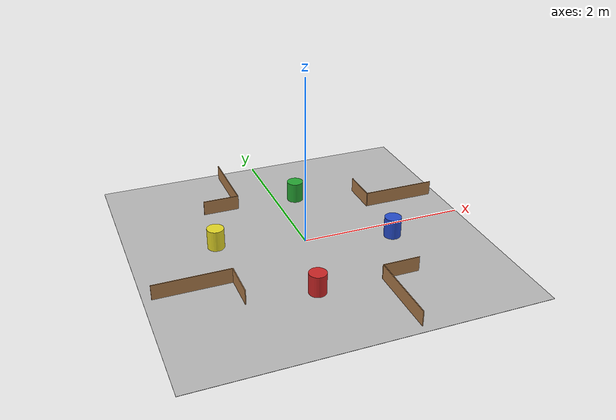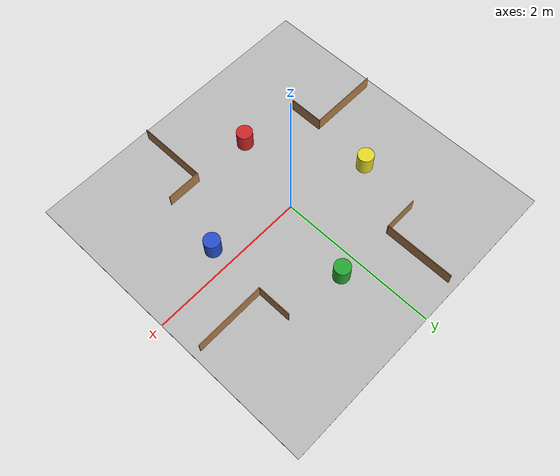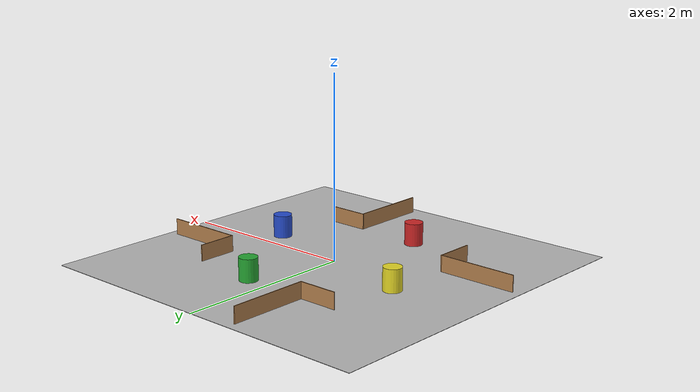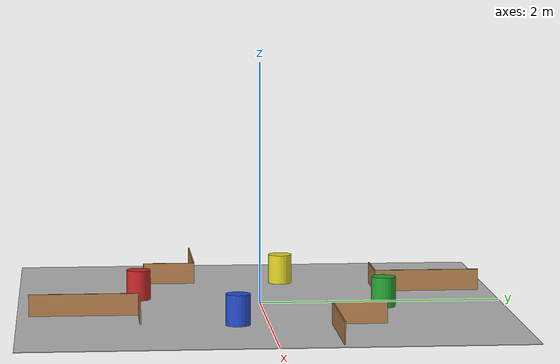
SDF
<?xml version="1.0"?>
<sdf version="1.4">
<model name="task2b">
  <static>true</static>
    <link name="floor">
      <collision name="collision">
        <geometry>
          <plane>
            <normal>0 0 1</normal>
            <size>4.0 4.0</size>
          </plane>
        </geometry>
        <surface>
          <friction>
            <ode>
              <mu>100</mu>
              <mu2>50</mu2>
            </ode>
          </friction>
        </surface>
      </collision>
      <visual name="visual">
        <cast_shadows>false</cast_shadows>
        <geometry>
          <plane>
            <normal>0 0 1</normal>
            <size>4.0 4.0</size>
          </plane>
        </geometry>
        <material>
          <script>
            <uri>model://task2b/materials/scripts</uri>
            <uri>model://task2b/materials/textures</uri>
            <name>Task2bFloor/Image</name>
          </script>
        </material>
      </visual>
    </link>
    <link name='YEL'>
      <pose frame=''>-1 0.25 0.125 0 0 0</pose>
      <collision name='coll'>
        <geometry>
          <cylinder>
            <radius>0.1</radius>
            <length>0.25</length>
          </cylinder>
        </geometry>
        <max_contacts>10</max_contacts>
        <surface>
          <bounce/>
          <friction>
            <ode/>
          </friction>
          <contact>
            <ode/>
          </contact>
        </surface>
      </collision>
      <visual name='vis'>
        <geometry>
          <cylinder>
            <radius>0.1</radius>
            <length>0.25</length>
          </cylinder>
        </geometry>
        <material>
          <script>
            <uri>file://media/materials/scripts/gazebo.material</uri>
            <name>Gazebo/Yellow</name>
          </script>
        </material>
      </visual>
    </link>
    <link name='GRN'>
      <pose frame=''>0.25 1 0.125 0 0 0</pose>
      <collision name='coll'>
        <geometry>
          <cylinder>
            <radius>0.1</radius>
            <length>0.25</length>
          </cylinder>
        </geometry>
        <max_contacts>10</max_contacts>
        <surface>
          <bounce/>
          <friction>
            <ode/>
          </friction>
          <contact>
            <ode/>
          </contact>
        </surface>
      </collision>
      <visual name='vis'>
        <geometry>
          <cylinder>
            <radius>0.1</radius>
            <length>0.25</length>
          </cylinder>
        </geometry>
        <material>
          <script>
            <uri>file://media/materials/scripts/gazebo.material</uri>
            <name>Gazebo/Green</name>
          </script>
        </material>
      </visual>
    </link>
    <link name='BLU'>
      <pose frame=''>1 -0.25 0.125 0 0 0</pose>
      <collision name='coll'>
        <geometry>
          <cylinder>
            <radius>0.1</radius>
            <length>0.25</length>
          </cylinder>
        </geometry>
        <max_contacts>10</max_contacts>
        <surface>
          <bounce/>
          <friction>
            <ode/>
          </friction>
          <contact>
            <ode/>
          </contact>
        </surface>
      </collision>
      <visual name='vis'>
        <geometry>
          <cylinder>
            <radius>0.1</radius>
            <length>0.25</length>
          </cylinder>
        </geometry>
        <material>
          <script>
            <uri>file://media/materials/scripts/gazebo.material</uri>
            <name>Gazebo/Blue</name>
          </script>
        </material>
      </visual>
    </link>
    <link name='RED'>
      <pose frame=''>-0.25 -1 0.125 0 0 0</pose>
      <collision name='coll'>
        <geometry>
          <cylinder>
            <radius>0.1</radius>
            <length>0.25</length>
          </cylinder>
        </geometry>
        <max_contacts>10</max_contacts>
        <surface>
          <bounce/>
          <friction>
            <ode/>
          </friction>
          <contact>
            <ode/>
          </contact>
        </surface>
      </collision>
      <visual name='vis'>
        <geometry>
          <cylinder>
            <radius>0.1</radius>
            <length>0.25</length>
          </cylinder>
        </geometry>
        <material>
          <script>
            <uri>file://media/materials/scripts/gazebo.material</uri>
            <name>Gazebo/Red</name>
          </script>
        </material>
      </visual>
    </link>

    <link name='wall_asm1'>
      <pose frame=''>-1.46 -0.72 0.09 0 0 0</pose>
        <collision name='long_col'>
          <pose frame=''>-0.005 0.22 0 0 0 0</pose>
          <geometry>
            <box>
              <size>0.88 0.01 0.18</size>
            </box>
          </geometry>
        </collision>
        <visual name='long_vis'>
          <pose frame=''>-0.005 0.22 0 0 0 0</pose>
          <geometry>
            <box>
              <size>0.88 0.01 0.18</size>
            </box>
          </geometry>
          <material>
            <script>
              <uri>file://media/materials/scripts/gazebo.material</uri>
              <name>Gazebo/Wood</name>
            </script>
          </material>
        </visual>
        <collision name='short_coll'>
          <pose frame=''>0.44 0.005 0 0 0 0</pose>
          <geometry>
            <box>
              <size>0.01 0.44 0.18</size>
            </box>
          </geometry>
        </collision>
        <visual name='short_vis'>
          <pose frame=''>0.44 0.005 0 0 0 0</pose>
          <geometry>
            <box>
              <size>0.01 0.44 0.18</size>
            </box>
          </geometry>
          <material>
            <script>
              <uri>file://media/materials/scripts/gazebo.material</uri>
              <name>Gazebo/Wood</name>
            </script>
          </material>
        </visual>
    </link>

    <link name='wall_asm2'>
      <pose frame=''>-0.72 1.46 0.09 0 0 -1.571</pose>
        <collision name='long_col'>
          <pose frame=''>-0.005 0.22 0 0 0 0</pose>
          <geometry>
            <box>
              <size>0.88 0.01 0.18</size>
            </box>
          </geometry>
        </collision>
        <visual name='long_vis'>
          <pose frame=''>-0.005 0.22 0 0 0 0</pose>
          <geometry>
            <box>
              <size>0.88 0.01 0.18</size>
            </box>
          </geometry>
          <material>
            <script>
              <uri>file://media/materials/scripts/gazebo.material</uri>
              <name>Gazebo/Wood</name>
            </script>
          </material>
        </visual>
        <collision name='short_coll'>
          <pose frame=''>0.44 0.005 0 0 0 0</pose>
          <geometry>
            <box>
              <size>0.01 0.44 0.18</size>
            </box>
          </geometry>
        </collision>
        <visual name='short_vis'>
          <pose frame=''>0.44 0.005 0 0 0 0</pose>
          <geometry>
            <box>
              <size>0.01 0.44 0.18</size>
            </box>
          </geometry>
          <material>
            <script>
              <uri>file://media/materials/scripts/gazebo.material</uri>
              <name>Gazebo/Wood</name>
            </script>
          </material>
        </visual>
    </link>

    <link name='wall_asm3'>
      <pose frame=''>1.46 0.72 0.09 0 0 3.142</pose>
        <collision name='long_col'>
          <pose frame=''>-0.005 0.22 0 0 0 0</pose>
          <geometry>
            <box>
              <size>0.88 0.01 0.18</size>
            </box>
          </geometry>
        </collision>
        <visual name='long_vis'>
          <pose frame=''>-0.005 0.22 0 0 0 0</pose>
          <geometry>
            <box>
              <size>0.88 0.01 0.18</size>
            </box>
          </geometry>
          <material>
            <script>
              <uri>file://media/materials/scripts/gazebo.material</uri>
              <name>Gazebo/Wood</name>
            </script>
          </material>
        </visual>
        <collision name='short_coll'>
          <pose frame=''>0.44 0.005 0 0 0 0</pose>
          <geometry>
            <box>
              <size>0.01 0.44 0.18</size>
            </box>
          </geometry>
        </collision>
        <visual name='short_vis'>
          <pose frame=''>0.44 0.005 0 0 0 0</pose>
          <geometry>
            <box>
              <size>0.01 0.44 0.18</size>
            </box>
          </geometry>
          <material>
            <script>
              <uri>file://media/materials/scripts/gazebo.material</uri>
              <name>Gazebo/Wood</name>
            </script>
          </material>
        </visual>
    </link>

    <link name='wall_asm4'>
      <pose frame=''>0.72 -1.46 0.09 0 0 1.571</pose>
        <collision name='long_col'>
          <pose frame=''>-0.005 0.22 0 0 0 0</pose>
          <geometry>
            <box>
              <size>0.88 0.01 0.18</size>
            </box>
          </geometry>
        </collision>
        <visual name='long_vis'>
          <pose frame=''>-0.005 0.22 0 0 0 0</pose>
          <geometry>
            <box>
              <size>0.88 0.01 0.18</size>
            </box>
          </geometry>
          <material>
            <script>
              <uri>file://media/materials/scripts/gazebo.material</uri>
              <name>Gazebo/Wood</name>
            </script>
          </material>
        </visual>
        <collision name='short_coll'>
          <pose frame=''>0.44 0.005 0 0 0 0</pose>
          <geometry>
            <box>
              <size>0.01 0.44 0.18</size>
            </box>
          </geometry>
        </collision>
        <visual name='short_vis'>
          <pose frame=''>0.44 0.005 0 0 0 0</pose>
          <geometry>
            <box>
              <size>0.01 0.44 0.18</size>
            </box>
          </geometry>
          <material>
            <script>
              <uri>file://media/materials/scripts/gazebo.material</uri>
              <name>Gazebo/Wood</name>
            </script>
          </material>
        </visual>
    </link>

  </model>
</sdf>
